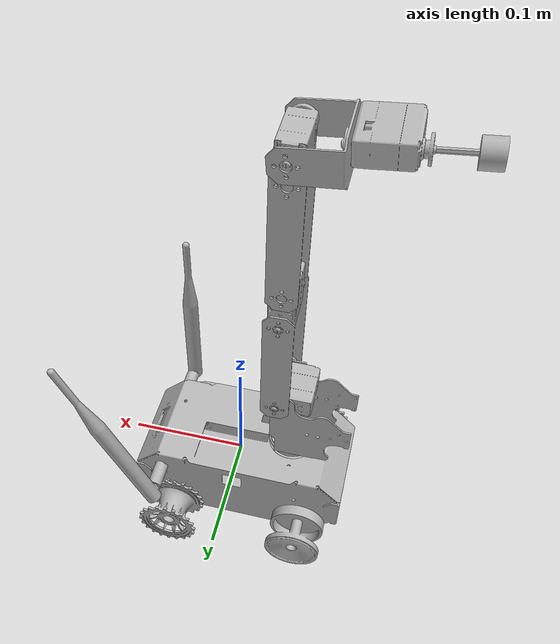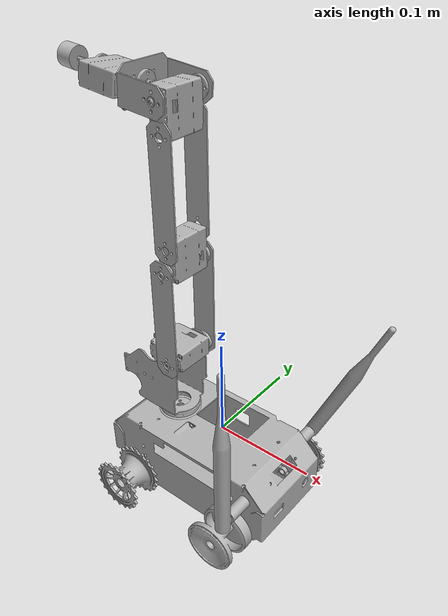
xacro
<?xml version="1.0" ?>
<robot name="jetank" xmlns:xacro="http://www.ros.org/wiki/xacro">
    <xacro:arg name="namespace" default="jetank" />

    <xacro:property name="PI" value="3.1415" />
    <xacro:property name="scale" value="0.001 0.001 0.001" />

    <link name="base_link">
        <inertial>
            <origin xyz="-0.004435000283629018 -0.010243918252694353 -0.02819811925527743" rpy="0 0 0"/>
            <mass value="4.0"/>
            <inertia ixx="0.008" iyy="0.018" izz="0.020" ixy="4.5e-05" iyz="2e-05" ixz="2.5e-04"/>
        </inertial>
        <visual>
            <origin xyz="0 0 0" rpy="0 0 0"/>
            <geometry>
                <mesh filename="file://$(find jetank_description)/meshes/visual/base_link.stl" scale="0.001 0.001 0.001"/>
            </geometry>
            <material name="silver"/>
        </visual>
        <collision>
            <origin xyz="0 0 0" rpy="0 0 0"/>
            <geometry>
                <mesh filename="file://$(find jetank_description)/meshes/collision_boxes/base_link_box.stl" scale="0.001 0.001 0.001"/>
            </geometry>
        </collision>
    </link>

    <link name="ANTENNA_L_1">
        <inertial>
            <origin xyz="-0.00010440589830879032 -0.028760958470267856 0.051254628121503915" rpy="0 0 0"/>
            <mass value="0.1712590340150529"/>
            <inertia ixx="0.000314" iyy="0.000306" izz="1.1e-05" ixy="-0.0" iyz="2.1e-05" ixz="0.0"/>
        </inertial>
        <visual>
            <origin xyz="-0.070085 0.055118 0.007934" rpy="0 0 0"/>
            <geometry>
                <mesh filename="file://$(find jetank_description)/meshes/visual/ANTENNA_L_1.stl" scale="0.001 0.001 0.001"/>
            </geometry>
            <material name="silver"/>
        </visual>
        <collision>
            <origin xyz="-0.070085 0.055118 0.007934" rpy="0 0 0"/>
            <geometry>
                <mesh filename="file://$(find jetank_description)/meshes/collision_boxes/ANTENNA_L_1_box.stl" scale="0.001 0.001 0.001"/>
            </geometry>
        </collision>
    </link>

    <link name="BEARING_1">
        <inertial>
            <origin xyz="1.0562222860915904e-07 -5.0363254768710786e-06 0.002529664311033247" rpy="0 0 0"/>
            <mass value="0.05589211207057759"/>
            <inertia ixx="9e-06" iyy="9e-06" izz="1.7e-05" ixy="0.0" iyz="-0.0" ixz="-0.0"/>
        </inertial>
        <visual>
            <origin xyz="0.046079 0.010536 -0.01116" rpy="0 0 0"/>
            <geometry>
                <mesh filename="file://$(find jetank_description)/meshes/visual/BEARING_1.stl" scale="0.001 0.001 0.001"/>
            </geometry>
            <material name="silver"/>
        </visual>
        <collision>
            <origin xyz="0.046079 0.010536 -0.01116" rpy="0 0 0"/>
            <geometry>
                <mesh filename="file://$(find jetank_description)/meshes/collision_boxes/BEARING_1_box.stl" scale="0.001 0.001 0.001"/>
            </geometry>
        </collision>
    </link>

    <link name="ARM_LOWER_1">
        <inertial>
            <origin xyz="0.01064714156754467 5.4423566282478866e-05 0.029441657866703955" rpy="0 0 0"/>
            <mass value="0.1036438493797283"/>
            <inertia ixx="8.8e-05" iyy="8e-05" izz="7.2e-05" ixy="0.0" iyz="0.0" ixz="-2e-06"/>
        </inertial>

        <visual>
            <origin xyz="-0.046079 -0.010553 -0.01919" rpy="0 0 3.141593"/>
            <geometry>
                <mesh filename="file://$(find jetank_description)/meshes/visual/ARM_LOWER_1.stl" scale="0.001 0.001 0.001"/>
            </geometry>
            <material name="silver"/>
        </visual>

        <collision>
            <origin xyz="-0.046079 -0.010553 -0.01919" rpy="0 0 3.141593"/>
            <geometry>
                <mesh filename="file://$(find jetank_description)/meshes/collision_boxes/ARM_LOWER_1_box.stl" scale="0.001 0.001 0.001"/>
            </geometry>
        </collision>
    </link>

    <link name="FREE_WHEEL_L_1">
        <inertial>
            <origin xyz="-4.900425932286012e-05 -0.01352712007658996 -2.8519849338277947e-05" rpy="0 0 0"/>
            <mass value="0.11488889485414525"/>
            <inertia ixx="4.1e-05" iyy="4e-05" izz="4.1e-05" ixy="-0.0" iyz="-0.0" ixz="-0.0"/>
        </inertial>
        <visual>
            <origin xyz="-0.05431 0.054968 0.052234" rpy="0 0 0"/>
            <geometry>
                <mesh filename="file://$(find jetank_description)/meshes/visual/FREE_WHEEL_L_1.stl" scale="0.001 0.001 0.001"/>
            </geometry>
            <material name="silver"/>
        </visual>
        <collision>
            <origin xyz="-0.05431 0.054968 0.052234" rpy="0 0 0"/>
            <geometry>
                <mesh filename="file://$(find jetank_description)/meshes/collision/FREE_WHEEL_L_1.stl" scale="0.001 0.001 0.001"/>
            </geometry>
        </collision>
    </link>

    <link name="FREE_WHEEL_R_1">
        <inertial>
            <origin xyz="4.918568823523983e-05 0.013527127364721232 2.8053712538597675e-05" rpy="0 0 0"/>
            <mass value="0.11488889485415185"/>
            <inertia ixx="4.1e-05" iyy="4e-05" izz="4.1e-05" ixy="-0.0" iyz="-0.0" ixz="-0.0"/>
        </inertial>
        <visual>
            <origin xyz="0.063868 -0.033862 0.052048" rpy="0 0 0"/>
            <geometry>
                <mesh filename="file://$(find jetank_description)/meshes/visual/FREE_WHEEL_R_1.stl" scale="0.001 0.001 0.001"/>
            </geometry>
            <material name="silver"/>
        </visual>
        <collision>
            <origin xyz="0.063868 -0.033862 0.052048" rpy="0 0 0"/>
            <geometry>
                <mesh filename="file://$(find jetank_description)/meshes/collision/FREE_WHEEL_R_1.stl" scale="0.001 0.001 0.001"/>
            </geometry>
        </collision>
    </link>

    <link name="SERVO_LOWER_1">
        <inertial>
            <origin xyz="-0.0177806432945467 -0.017517446416127354 -3.676811534183977e-05" rpy="0 0 0"/>
            <mass value="0.20982161326471963"/>
            <inertia ixx="3.7e-05" iyy="3.5e-05" izz="5.8e-05" ixy="-0.0" iyz="-0.0" ixz="-0.0"/>
        </inertial>
        <visual>
            <origin xyz="0.032586 -0.009458 -0.086381" rpy="0 0 0"/>
            <geometry>
                <mesh filename="file://$(find jetank_description)/meshes/visual/SERVO_LOWER_1.stl" scale="0.001 0.001 0.001"/>
            </geometry>
            <material name="silver"/>
        </visual>
        <collision>
            <origin xyz="0.032586 -0.009458 -0.086381" rpy="0 0 0"/>
            <geometry>
                <mesh filename="file://$(find jetank_description)/meshes/collision_boxes/SERVO_LOWER_1_box.stl" scale="0.001 0.001 0.001"/>
            </geometry>
        </collision>
    </link>

    <link name="DRIVER_WHEEL_R_2">
        <inertial>
            <origin xyz="6.935655254387829e-05 0.019022053226744773 2.9509046361002322e-05" rpy="0 0 0"/>
            <mass value="0.1049698213829899"/>
            <inertia ixx="2.3e-05" iyy="2.5e-05" izz="2.3e-05" ixy="0.0" iyz="-0.0" ixz="-0.0"/>
        </inertial>
        <visual>
            <origin xyz="-0.054631 -0.033431 0.052049" rpy="0 0 0"/>
            <geometry>
                <mesh filename="file://$(find jetank_description)/meshes/visual/DRIVER_WHEEL_R_2.stl" scale="0.001 0.001 0.001"/>
            </geometry>
            <material name="silver"/>
        </visual>
        <collision>
            <origin xyz="-0.054631 -0.033431 0.052049" rpy="0 0 0"/>
            <geometry>
                <mesh filename="file://$(find jetank_description)/meshes/collision/DRIVER_WHEEL_R_2.stl" scale="0.001 0.001 0.001"/>
            </geometry>
        </collision>
    </link>

    <link name="DRIVER_WHEEL_L_1">
        <inertial>
            <origin xyz="-6.918869203477451e-05 -0.01902200130388708 -5.0233203182634134e-05" rpy="0 0 0"/>
            <mass value="0.10496982138298995"/>
            <inertia ixx="2.3e-05" iyy="2.5e-05" izz="2.3e-05" ixy="0.0" iyz="0.0" ixz="0.0"/>
        </inertial>
        <visual>
            <origin xyz="0.064189 0.054537 0.052234" rpy="0 0 0"/>
            <geometry>
                <mesh filename="file://$(find jetank_description)/meshes/visual/DRIVER_WHEEL_L_1.stl" scale="0.001 0.001 0.001"/>
            </geometry>
            <material name="silver"/>
        </visual>
        <collision>
            <origin xyz="0.064189 0.054537 0.052234" rpy="0 0 0"/>
            <geometry>
                <mesh filename="file://$(find jetank_description)/meshes/collision/DRIVER_WHEEL_L_1.stl" scale="0.001 0.001 0.001"/>
            </geometry>
        </collision>
    </link>

    <link name="ARM_LOW_2">
        <inertial>
            <origin xyz="1.7687520004194823e-08 -9.963926975617432e-05 0.04750023925684019" rpy="0 0 0"/>
            <mass value="0.0618639746492048"/>
            <inertia ixx="0.000109" iyy="6.8e-05" izz="4.6e-05" ixy="-0.0" iyz="0.0" ixz="0.0"/>
        </inertial>
        <visual>
            <origin xyz="0.059673 0.008894 -0.086342" rpy="0 0 0"/>
            <geometry>
                <mesh filename="file://$(find jetank_description)/meshes/visual/ARM_LOW_2.stl" scale="0.001 0.001 0.001"/>
            </geometry>
            <material name="silver"/>
        </visual>
        <collision>
            <origin xyz="0.059673 0.008894 -0.086342" rpy="0 0 0"/>
            <geometry>
                <mesh filename="file://$(find jetank_description)/meshes/collision_boxes/ARM_LOW_2_box.stl" scale="0.001 0.001 0.001"/>
            </geometry>
        </collision>
    </link>

    <link name="SERVO_UPPER_1">
        <inertial>
            <origin xyz="2.9576048448734515e-06 0.0008485888864527055 0.009304921523950349" rpy="0 0 0"/>
            <mass value="0.20982161326472018"/>
            <inertia ixx="5.8e-05" iyy="3.5e-05" izz="3.7e-05" ixy="-0.0" iyz="-0.0" ixz="-0.0"/>
        </inertial>
        <visual>
            <origin xyz="0.059673 0.009093 -0.181342" rpy="0 0 0"/>
            <geometry>
                <mesh filename="file://$(find jetank_description)/meshes/visual/SERVO_UPPER_1.stl" scale="0.001 0.001 0.001"/>
            </geometry>
            <material name="silver"/>
        </visual>
        <collision>
            <origin xyz="0.059673 0.009093 -0.181342" rpy="0 0 0"/>
            <geometry>
                <mesh filename="file://$(find jetank_description)/meshes/collision_boxes/SERVO_UPPER_1_box.stl" scale="0.001 0.001 0.001"/>
            </geometry>
        </collision>
    </link>

    <link name="ARM_MIDDLE_1">
        <inertial>
            <origin xyz="-0.007177444253456761 0.019934386293931565 0.0438021171732606" rpy="0 0 0"/>
            <mass value="0.061863974649204866"/>
            <inertia ixx="9.3e-05" iyy="6.9e-05" izz="3e-05" ixy="0.0" iyz="5e-06" ixz="-0.0"/>
        </inertial>
        <visual>
            <origin xyz="0.052251 0.030528 -0.208797" rpy="0 0 0"/>
            <geometry>
                <mesh filename="file://$(find jetank_description)/meshes/visual/ARM_MIDDLE_1.stl" scale="0.001 0.001 0.001"/>
            </geometry>
            <material name="silver"/>
        </visual>
        <collision>
            <origin xyz="0.052251 0.030528 -0.208797" rpy="0 0 0"/>
            <geometry>
                <mesh filename="file://$(find jetank_description)/meshes/collision_boxes/ARM_MIDDLE_1_box.stl" scale="0.001 0.001 0.001"/>
            </geometry>
        </collision>
    </link>

    <link name="SERVO_TOP_1">
        <inertial>
            <origin xyz="0.007078521472817033 0.017733298353123855 0.010744947314865527" rpy="0 0 0"/>
            <mass value="0.20982278190693662"/>
            <inertia ixx="5.8e-05" iyy="3.5e-05" izz="3.7e-05" ixy="-0.0" iyz="-0.0" ixz="-0.0"/>
        </inertial>
        <visual>
            <origin xyz="0.066251 0.030676 -0.303797" rpy="0 0 0"/>
            <geometry>
                <mesh filename="file://$(find jetank_description)/meshes/visual/SERVO_TOP_1.stl" scale="0.001 0.001 0.001"/>
            </geometry>
            <material name="silver"/>
        </visual>
        <collision>
            <origin xyz="0.066251 0.030676 -0.303797" rpy="0 0 0"/>
            <geometry>
                <mesh filename="file://$(find jetank_description)/meshes/collision_boxes/SERVO_TOP_1_box.stl" scale="0.001 0.001 0.001"/>
            </geometry>
        </collision>
    </link>

    <link name="MAGNETIC_HOLDER_1">
        <inertial>
            <origin xyz="-0.022224880170435432 7.661146605784062e-05 0.0019460812062961352" rpy="0 0 0"/>
            <mass value="0.04320508566431304"/>
            <inertia ixx="2.6e-05" iyy="1.2e-05" izz="3.2e-05" ixy="-0.0" iyz="-0.0" ixz="1e-06"/>
        </inertial>
        <visual>
            <origin xyz="0.059157 0.012094 -0.323847" rpy="0 0 0"/>
            <geometry>
                <mesh filename="file://$(find jetank_description)/meshes/visual/MAGNETIC_HOLDER_1.stl" scale="0.001 0.001 0.001"/>
            </geometry>
            <material name="silver"/>
        </visual>
        <collision>
            <origin xyz="0.059157 0.012094 -0.323847" rpy="0 0 0"/>
            <geometry>
                <mesh filename="file://$(find jetank_description)/meshes/collision_boxes/MAGNETIC_HOLDER_1_box.stl" scale="0.001 0.001 0.001"/>
            </geometry>
        </collision>
    </link>

    <link name="MAGNETIC_BAR_1">
        <inertial>
            <origin xyz="-0.012452342928912341 4.292456372326746e-05 0.0010891852693441506" rpy="0 0 0"/>
            <mass value="0.0020394898259123236"/>
            <inertia ixx="0.0" iyy="0.0" izz="0.0" ixy="0.0" iyz="-0.0" ixz="0.0"/>
        </inertial>
        <visual>
            <origin xyz="0.14179 0.011809 -0.331077" rpy="0 0 0"/>
            <geometry>
                <mesh filename="file://$(find jetank_description)/meshes/visual/MAGNETIC_BAR_1.stl" scale="0.001 0.001 0.001"/>
            </geometry>
            <material name="silver"/>
        </visual>
        <collision>
            <origin xyz="0.14179 0.011809 -0.331077" rpy="0 0 0"/>
            <geometry>
                <mesh filename="file://$(find jetank_description)/meshes/collision_boxes/MAGNETIC_BAR_1_box.stl" scale="0.001 0.001 0.001"/>
            </geometry>
        </collision>
    </link>

    <link name="MAGNETIC_1">
        <inertial>
            <origin xyz="-0.007471112070137148 2.5645436706895827e-05 0.0006533721924183444" rpy="0 0 0"/>
            <mass value="0.03699225349601977"/>
            <inertia ixx="2e-06" iyy="2e-06" izz="2e-06" ixy="-0.0" iyz="0.0" ixz="-0.0"/>
        </inertial>
        <visual>
            <origin xyz="0.166695 0.011723 -0.333256" rpy="0 0 0"/>
            <geometry>
                <mesh filename="file://$(find jetank_description)/meshes/visual/MAGNETIC_1.stl" scale="0.001 0.001 0.001"/>
            </geometry>
            <material name="silver"/>
        </visual>
        <collision>
            <origin xyz="0.166695 0.011723 -0.333256" rpy="0 0 0"/>
            <geometry>
                <mesh filename="file://$(find jetank_description)/meshes/collision_boxes/MAGNETIC_1_box.stl" scale="0.001 0.001 0.001"/>
            </geometry>
        </collision>
    </link>

    <link name="SERVO_END_1">
        <inertial>
            <origin xyz="-0.022096769314818562 -0.009192620179157838 0.0027277032402819867" rpy="0 0 0"/>
            <mass value="0.20982321632769318"/>
            <inertia ixx="3.5e-05" iyy="3.7e-05" izz="5.7e-05" ixy="-0.0" iyz="2e-06" ixz="2e-06"/>
        </inertial>
        <visual>
            <origin xyz="0.094371 0.011973 -0.326928" rpy="0 0 0"/>
            <geometry>
                <mesh filename="file://$(find jetank_description)/meshes/visual/SERVO_END_1.stl" scale="0.001 0.001 0.001"/>
            </geometry>
            <material name="silver"/>
        </visual>
        <collision>
            <origin xyz="0.094371 0.011973 -0.326928" rpy="0 0 0"/>
            <geometry>
                <mesh filename="file://$(find jetank_description)/meshes/collision_boxes/SERVO_END_1_box.stl" scale="0.001 0.001 0.001"/>
            </geometry>
        </collision>
    </link>

    <link name="ANTENNA_R_2">
        <inertial>
            <origin xyz="0.00010392026432098911 0.028545800060322313 0.05137523606181993" rpy="0 0 0"/>
            <mass value="0.17125903401505282"/>
            <inertia ixx="0.000314" iyy="0.000307" izz="1.1e-05" ixy="-0.0" iyz="-2e-05" ixz="-0.0"/>
        </inertial>
        <visual>
            <origin xyz="-0.067106 -0.033293 0.007749" rpy="0 0 0"/>
            <geometry>
                <mesh filename="file://$(find jetank_description)/meshes/visual/ANTENNA_R_2.stl" scale="0.001 0.001 0.001"/>
            </geometry>
            <material name="silver"/>
        </visual>
        <collision>
            <origin xyz="-0.067106 -0.033293 0.007749" rpy="0 0 0"/>
            <geometry>
                <mesh filename="file://$(find jetank_description)/meshes/collision_boxes/ANTENNA_R_2_box.stl" scale="0.001 0.001 0.001"/>
            </geometry>
        </collision>
    </link>

    <joint name="Rigid_ANTENNA_L_BASE_JOINT" type="fixed">
        <origin xyz="0.070085 -0.055118 -0.007934" rpy="0 0 0"/>
        <parent link="base_link"/>
        <child link="ANTENNA_L_1"/>
    </joint>

    <joint name="Rigid_BEARING_BASE_JOINT" type="fixed">
        <origin xyz="-0.046079 -0.010536 0.01116" rpy="0 0 0"/>
        <parent link="base_link"/>
        <child link="BEARING_1"/>
    </joint>

    <joint name="Revolute_BEARING" type="revolute">
    <origin xyz="0.0 -1.7e-05 0.00803" rpy="0 0 3.141593"/>

    <parent link="BEARING_1"/>
    <child link="ARM_LOWER_1"/>
    <axis xyz="-4e-06 -0.002097 0.999998"/>
    <limit upper="3.141593" lower="-3.141593" effort="100" velocity="100"/>
    </joint>

    <joint name="Revolute_FREE_WHEEL_LEFT" type="continuous">
        <origin xyz="0.05431 -0.054968 -0.052234" rpy="0 0 0"/>
        <parent link="base_link"/>
        <child link="FREE_WHEEL_L_1"/>
        <axis xyz="0.003633 0.999991 0.002097"/>
        <limit effort="100" velocity="100"/>
    </joint>

    <joint name="Revolute_FREE_WHEEL_RIGHT" type="continuous">
        <origin xyz="-0.063868 0.033862 -0.052048" rpy="0 0 0"/>
        <parent link="base_link"/>
        <child link="FREE_WHEEL_R_1"/>
        <axis xyz="0.003633 0.999991 0.002097"/>
        <limit effort="100" velocity="100"/>
    </joint>

    <joint name="Rigid_SERVO_LOWER_ARM_LOWER" type="fixed">
        <origin xyz="0.013493 0.020011 0.067191" rpy="0 0 0"/>
        <parent link="ARM_LOWER_1"/>
        <child link="SERVO_LOWER_1"/>
    </joint>

    <joint name="Revolute_DRIVING_WHEEL_R" type="continuous">
        <origin xyz="0.054631 0.033431 -0.052049" rpy="0 0 0"/>
        <parent link="base_link"/>
        <child link="DRIVER_WHEEL_R_2"/>
        <axis xyz="0.003633 0.999991 0.002097"/>
        <limit effort="100" velocity="100"/>
    </joint>

    <joint name="Revolute_DRIVING_WHEEL_L" type="continuous">
        <origin xyz="-0.064189 -0.054537 -0.052234" rpy="0 0 0"/>
        <parent link="base_link"/>
        <child link="DRIVER_WHEEL_L_1"/>
        <axis xyz="0.003633 0.999991 0.002097"/>
        <limit effort="100" velocity="100"/>
    </joint>

    <joint name="Revolute_ARM_LOW" type="continuous">
        <origin xyz="-0.027087 -0.018352 -3.9e-05" rpy="0 0 0"/>
        <parent link="SERVO_LOWER_1"/>
        <child link="ARM_LOW_2"/>
        <axis xyz="0.003633 0.999991 0.002097"/>
        <limit lower="-3.14" upper="3.14" effort="10.0" velocity="2.0"/>
    </joint>

    <joint name="Revolute_SERVO_UPPER" type="continuous">
        <origin xyz="0.0 -0.000199 0.095" rpy="0 0 0"/>
        <parent link="ARM_LOW_2"/>
        <child link="SERVO_UPPER_1"/>
        <axis xyz="0.003633 0.999991 0.002097"/>
        <limit lower="-3.14" upper="3.14" effort="10.0" velocity="2.0"/>
    </joint>

    <joint name="Rigid_ARM_MIDDLE_SERVO_UPPER" type="fixed">
        <origin xyz="0.007422 -0.021435 0.027455" rpy="0 0 0"/>
        <parent link="SERVO_UPPER_1"/>
        <child link="ARM_MIDDLE_1"/>
    </joint>

    <joint name="Rigid_SERVO_UPPER_" type="fixed">
        <origin xyz="-0.014 -0.000148 0.095" rpy="0 0 0"/>
        <parent link="ARM_MIDDLE_1"/>
        <child link="SERVO_TOP_1"/>
    </joint>

    <joint name="Revolute_SERVO_TOP" type="continuous">
        <origin xyz="0.007094 0.018582 0.02005" rpy="0 0 3.14159"/>
        <parent link="SERVO_TOP_1"/>
        <child link="MAGNETIC_HOLDER_1"/>
        <axis xyz="0.003633 0.999991 0.002097"/>
        <limit lower="-3.14" upper="3.14" effort="10.0" velocity="2.0"/>
    </joint>

    <joint name="Revolute_MAGNETIC_BAR" type="continuous">
        <origin xyz="-0.047419 0.000164 0.004149" rpy="0 0 0"/>
        <parent link="SERVO_END_1"/>
        <child link="MAGNETIC_BAR_1"/>
        <axis xyz="-0.996188 0.003436 0.087159"/>
        <limit lower="-3.14" upper="3.14" effort="10.0" velocity="2.0"/>
    </joint>

    <joint name="Rigid_MAGNETIC_MAGNETIC_BAR" type="fixed">
        <origin xyz="-0.024905 8.6e-05 0.002179" rpy="0 0 0"/>
        <parent link="MAGNETIC_BAR_1"/>
        <child link="MAGNETIC_1"/>
    </joint>

    <joint name="Rigid_SERVO_END_MAGNETIC_HOLDER" type="fixed">
        <origin xyz="-0.035214 0.000121 0.003081" rpy="0 0 0"/>
        <parent link="MAGNETIC_HOLDER_1"/>
        <child link="SERVO_END_1"/>
    </joint>

    <joint name="Rigid_ANTENNA_R_BASE_JOINT" type="fixed">
        <origin xyz="0.067106 0.033293 -0.007749" rpy="0 0 0"/>
        <parent link="base_link"/>
        <child link="ANTENNA_R_2"/>
    </joint>

    <gazebo reference="base_link">
      <material>Gazebo/Grey</material>
    </gazebo>

    <gazebo reference="BEARING_1">
      <self_collide>true</self_collide>
      <material>Gazebo/Grey</material>
    </gazebo>

    <gazebo reference="ARM_LOWER_1">
      <self_collide>true</self_collide>
      <material>Gazebo/Grey</material>
    </gazebo>

    <gazebo reference="SERVO_LOWER_1">
      <self_collide>true</self_collide>
      <material>Gazebo/Grey</material>
    </gazebo>

    <gazebo reference="ARM_LOW_2">
      <self_collide>true</self_collide>
      <material>Gazebo/Grey</material>
    </gazebo>

    <gazebo reference="SERVO_UPPER_1">
      <self_collide>true</self_collide>
      <material>Gazebo/Grey</material>
    </gazebo>

    <gazebo reference="ARM_MIDDLE_1">
      <self_collide>true</self_collide>
      <material>Gazebo/Grey</material>
    </gazebo>

    <gazebo reference="SERVO_TOP_1">
      <self_collide>true</self_collide>
      <material>Gazebo/Grey</material>
    </gazebo>

    <gazebo reference="MAGNETIC_HOLDER_1">
      <self_collide>true</self_collide>
      <material>Gazebo/Grey</material>
    </gazebo>

    <gazebo reference="SERVO_END_1">
      <self_collide>true</self_collide>
      <material>Gazebo/Grey</material>
    </gazebo>

    <gazebo reference="MAGNETIC_BAR_1">
      <self_collide>true</self_collide>
      <material>Gazebo/Grey</material>
    </gazebo>

    <gazebo reference="MAGNETIC_1">
      <self_collide>true</self_collide>
      <material>Gazebo/Grey</material>
    </gazebo>

    <gazebo reference="DRIVER_WHEEL_R_2">
      <mu1>0.2</mu1>
      <mu2>0.2</mu2>
      <material>Gazebo/DarkGrey</material>
    </gazebo>
    <gazebo reference="DRIVER_WHEEL_L_1">
      <mu1>0.2</mu1>
      <mu2>0.2</mu2>
      <material>Gazebo/DarkGrey</material>
    </gazebo>

    <xacro:include filename="jetank_controllers.xacro"  />
    <xacro:include filename="jetank_sensors.xacro"  />

    <xacro:include filename="jetank_materials.xacro" />

    <gazebo>
      <plugin filename="libignition-gazebo-joint-state-publisher-system.so"
              name="ignition::gazebo::systems::JointStatePublisher">
        <topic>/joint_states</topic>
      </plugin>

      <xacro:macro name="detachable_plugin_loop" params="i count">
          <xacro:if value="${i &lt;= count}">
              <plugin filename="ignition-gazebo-detachable-joint-system"
                      name="ignition::gazebo::systems::DetachableJoint">
                  <parent_link>MAGNETIC_BAR_1</parent_link>
                  <child_model>jenga${i}</child_model>
                  <child_link>body</child_link> <detach_topic>/$(arg namespace)/jenga${i}/detach</detach_topic>
                  <attach_topic>/$(arg namespace)/jenga${i}/attach</attach_topic>
              </plugin>
              <xacro:detachable_plugin_loop i="${i + 1}" count="${count}" />
          </xacro:if>
      </xacro:macro>

      <xacro:detachable_plugin_loop i="1" count="4" />

    </gazebo>

</robot>

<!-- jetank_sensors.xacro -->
<robot xmlns:xacro="http://www.ros.org/wiki/xacro" name="jetank">
	<!-- All other sensors such as Camera's, LiDAR's, IMU , etc... -->

	<!--Dummy link -->
	<link name="DUMMY_CAMERA"/>
	<link name="CAMERA_OPTICAL"/>

	<!-- Joint from camera to Dummy link -->
	<joint name="dummy_camera_joint" type="fixed">
        <origin xyz="0.06 0 0.05" rpy="0 0 0" />
        <parent link="ARM_LOWER_1" /> <!-- MAGNETIC_HOLDER_1 -->
		<child link="DUMMY_CAMERA" />
	</joint>

	<joint name="camera_optical_joint" type="fixed">
		<origin xyz="0 0 0" rpy="0 0 0" />
		<parent link="DUMMY_CAMERA" />
		<child link="CAMERA_OPTICAL" />
	</joint>

	<gazebo reference="DUMMY_CAMERA">
		<sensor name="camera" type="camera">
			<pose> 0 0 0 0 0 0 </pose>
			<visualize>true</visualize>
			<update_rate>10</update_rate>
			<camera>
				<camera_info_topic>camera/camera_info</camera_info_topic>
				<horizontal_fov>1.5</horizontal_fov>
				<image>
					<!-- (RED) 8 bits + (BLUE) 8 bits  + (GREEN) 8 bits -->
					<format>R8G8B8</format>
					<width>640</width>
					<height>480</height>
				</image>
				<clip>
					<near>0.05</near>
					<far>8.0</far>
				</clip>
			</camera>
			<always_on>1</always_on>
			<topic>$(arg namespace)/camera/image_raw</topic>
            <gz_frame_id>CAMERA_OPTICAL</gz_frame_id>
		</sensor>
	</gazebo>

	<!-- required for Gazebo such that ros2_control can work. We need to load a config file to tell what controllers to load -->
	<gazebo>
		<plugin filename="ign_ros2_control-system" name="ign_ros2_control::IgnitionROS2ControlPlugin">
			<parameters>
				$(find jetank_description)/config/jetank_controllers.yaml
			</parameters>
			<controller_manager_prefix_node_name>$(arg namespace)/controller_manager</controller_manager_prefix_node_name>
			<ros>
				<namespace>$(arg namespace)</namespace>
				<remapping>/robot_description:=robot_description</remapping>
				<remapping>/tf:=tf</remapping>
				<remapping>/tf_static:=tf_static</remapping>
			</ros>
		</plugin>
	</gazebo>

</robot>

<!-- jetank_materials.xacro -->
<robot name="jetank" xmlns:xacro="http://www.ros.org/wiki/xacro" >

  <material name="silver">
    <color rgba="0.700 0.700 0.700 1.000"/>
  </material>

  <material name="black">
    <color rgba="0 0 0 1"/>
  </material>

</robot>
